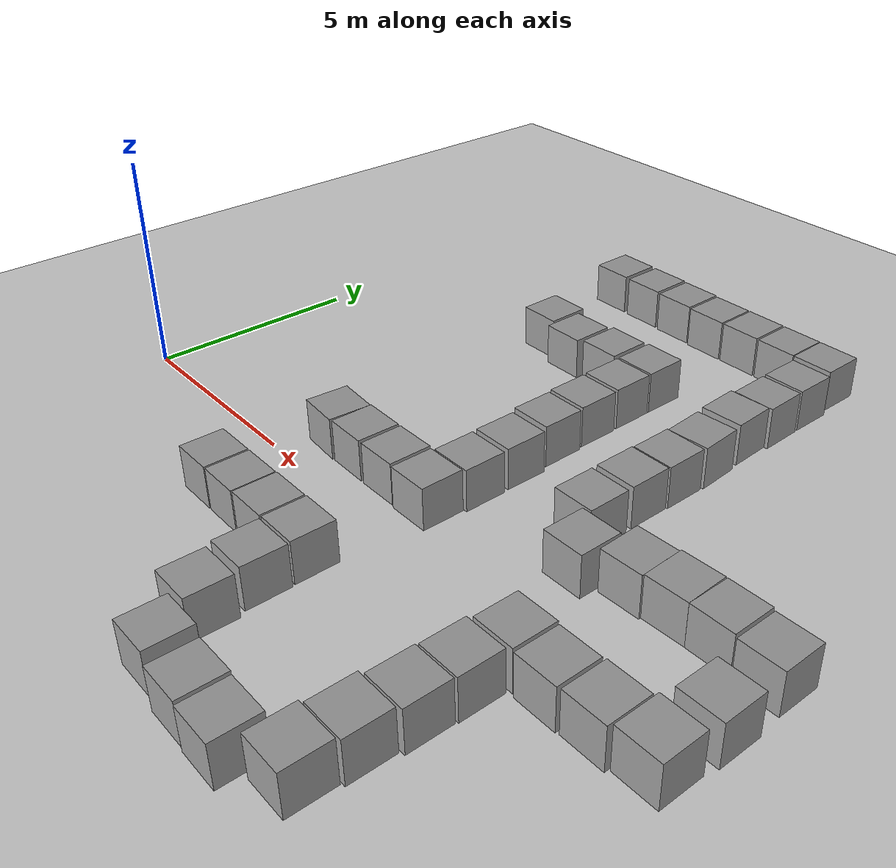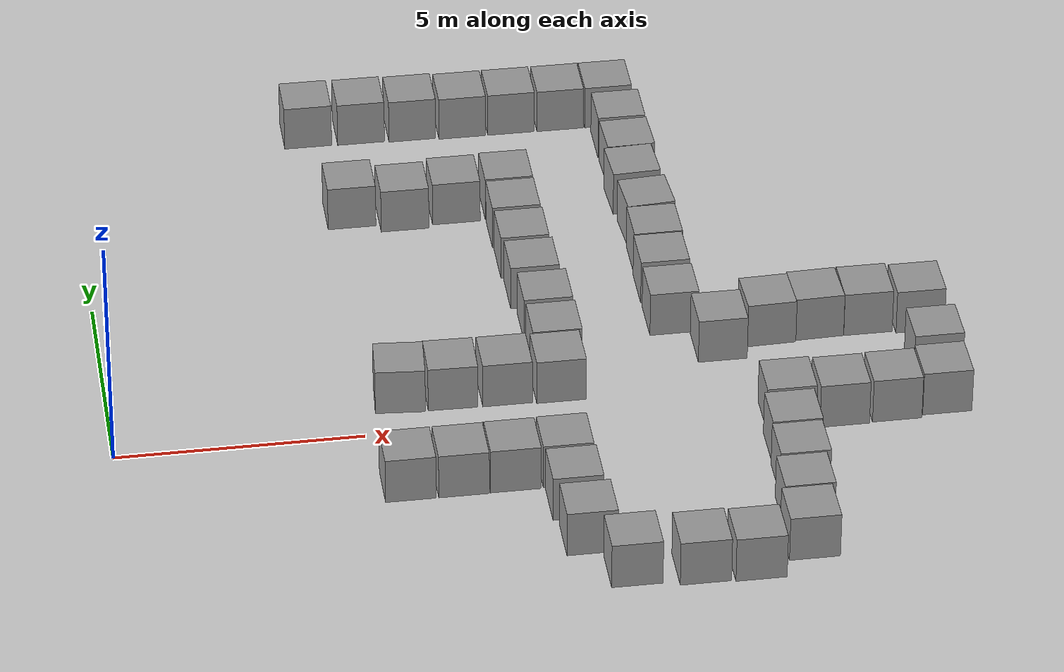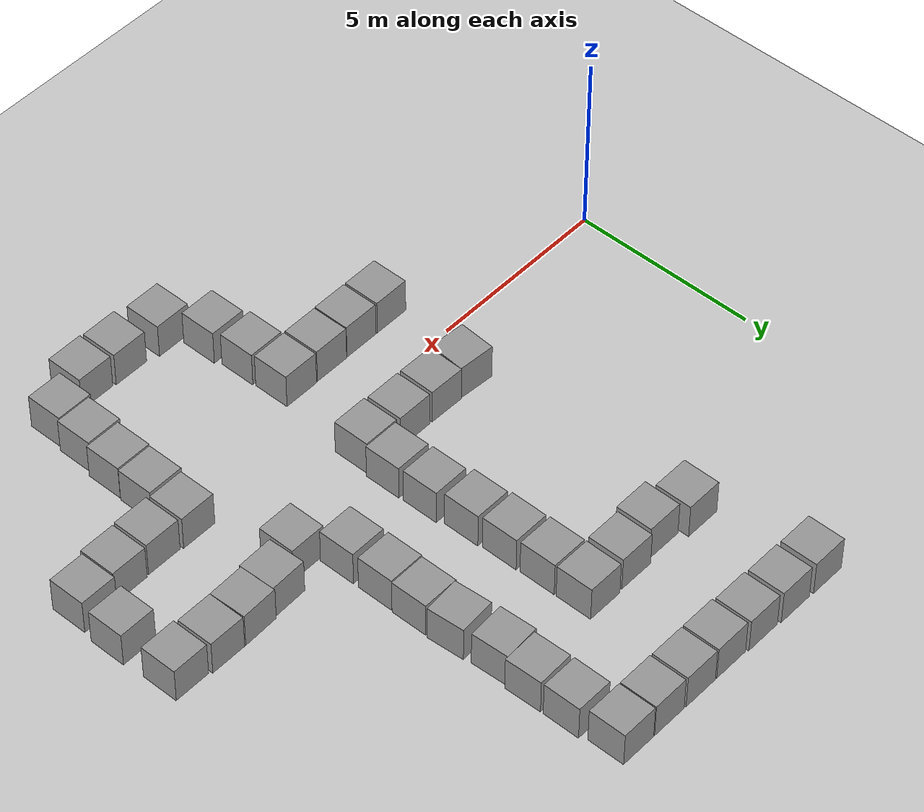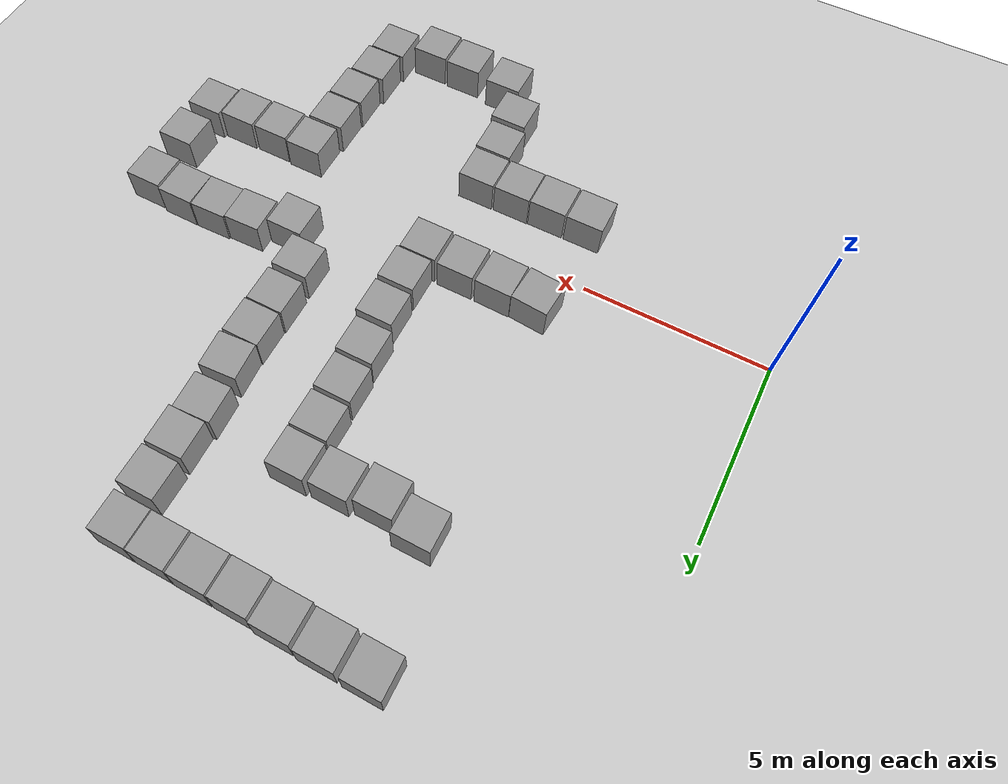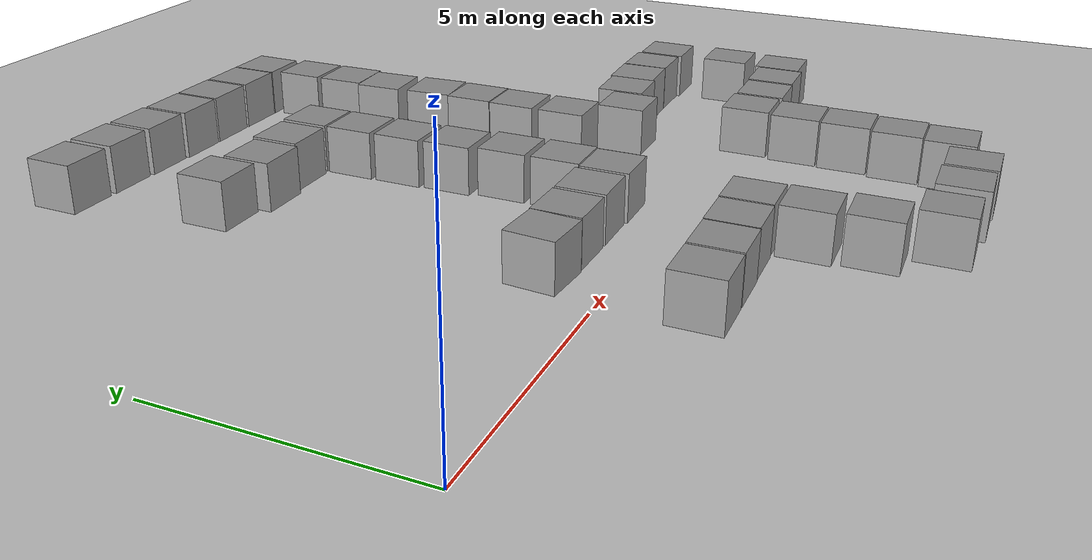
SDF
<sdf version="1.7">
 <world name="default">
  <model name="ground_plane">
   <static>1</static>
   <link name="link">
    <collision name="collision">
     <geometry><plane><normal>0 0 1</normal><size>100 100</size></plane></geometry>
     <surface><friction><ode><mu>100</mu><mu2>50</mu2></ode></friction></surface>
    </collision>
    <visual name="visual">
     <cast_shadows>0</cast_shadows>
     <geometry><plane><normal>0 0 1</normal><size>100 100</size></plane></geometry>
     <material>
      <script><uri>file://media/materials/scripts/gazebo.material</uri><name>Gazebo/Grey</name></script>
     </material>
    </visual>
   </link>
  </model>
  <model name="unit_box_4">
   <pose>5.83439 1.19515 0.499995 -1e-05 -0 -0.078203</pose>
   <link name="link">
    <inertial>
     <mass>1</mass>
     <inertia>
      <ixx>0.166667</ixx>
      <ixy>0</ixy>
      <ixz>0</ixz>
      <iyy>0.166667</iyy>
      <iyz>0</iyz>
      <izz>0.166667</izz>
     </inertia>
    </inertial>
    <collision name="collision"><geometry><box><size>1 1 1</size></box></geometry></collision>
    <visual name="visual">
     <geometry><box><size>1 1 1</size></box></geometry>
     <material>
      <script><name>Gazebo/Grey</name><uri>file://media/materials/scripts/gazebo.material</uri></script>
     </material>
    </visual>
   </link>
  </model>
  <model name="unit_box_5">
   <pose>6.86221 1.16701 0.499995 -1e-05 -0 -0.020162</pose>
   <link name="link">
    <inertial>
     <mass>1</mass>
     <inertia>
      <ixx>0.166667</ixx>
      <ixy>0</ixy>
      <ixz>0</ixz>
      <iyy>0.166667</iyy>
      <iyz>0</iyz>
      <izz>0.166667</izz>
     </inertia>
    </inertial>
    <collision name="collision"><geometry><box><size>1 1 1</size></box></geometry></collision>
    <visual name="visual">
     <geometry><box><size>1 1 1</size></box></geometry>
     <material>
      <script><name>Gazebo/Grey</name><uri>file://media/materials/scripts/gazebo.material</uri></script>
     </material>
    </visual>
   </link>
  </model>
  <model name="unit_box_6">
   <pose>7.9487 1.15327 0.499995 -1e-05 0 0</pose>
   <link name="link">
    <inertial>
     <mass>1</mass>
     <inertia>
      <ixx>0.166667</ixx>
      <ixy>0</ixy>
      <ixz>0</ixz>
      <iyy>0.166667</iyy>
      <iyz>0</iyz>
      <izz>0.166667</izz>
     </inertia>
    </inertial>
    <collision name="collision"><geometry><box><size>1 1 1</size></box></geometry></collision>
    <visual name="visual">
     <geometry><box><size>1 1 1</size></box></geometry>
     <material>
      <script><name>Gazebo/Grey</name><uri>file://media/materials/scripts/gazebo.material</uri></script>
     </material>
    </visual>
   </link>
  </model>
  <model name="unit_box_7">
   <pose>9.03135 1.11313 0.499995 0 1e-05 0</pose>
   <link name="link">
    <inertial>
     <mass>1</mass>
     <inertia>
      <ixx>0.166667</ixx>
      <ixy>0</ixy>
      <ixz>0</ixz>
      <iyy>0.166667</iyy>
      <iyz>0</iyz>
      <izz>0.166667</izz>
     </inertia>
    </inertial>
    <collision name="collision"><geometry><box><size>1 1 1</size></box></geometry></collision>
    <visual name="visual">
     <geometry><box><size>1 1 1</size></box></geometry>
     <material>
      <script><name>Gazebo/Grey</name><uri>file://media/materials/scripts/gazebo.material</uri></script>
     </material>
    </visual>
   </link>
  </model>
  <model name="unit_box_8">
   <pose>8.76045 -1.66109 0.499995 0 -1e-05 0</pose>
   <link name="link">
    <inertial>
     <mass>1</mass>
     <inertia>
      <ixx>0.166667</ixx>
      <ixy>0</ixy>
      <ixz>0</ixz>
      <iyy>0.166667</iyy>
      <iyz>0</iyz>
      <izz>0.166667</izz>
     </inertia>
    </inertial>
    <collision name="collision"><geometry><box><size>1 1 1</size></box></geometry></collision>
    <visual name="visual">
     <geometry><box><size>1 1 1</size></box></geometry>
     <material>
      <script><name>Gazebo/Grey</name><uri>file://media/materials/scripts/gazebo.material</uri></script>
     </material>
    </visual>
   </link>
  </model>
  <model name="unit_box_9">
   <pose>7.71543 -1.67512 0.499995 0 1e-05 0</pose>
   <link name="link">
    <inertial>
     <mass>1</mass>
     <inertia>
      <ixx>0.166667</ixx>
      <ixy>0</ixy>
      <ixz>0</ixz>
      <iyy>0.166667</iyy>
      <iyz>0</iyz>
      <izz>0.166667</izz>
     </inertia>
    </inertial>
    <collision name="collision"><geometry><box><size>1 1 1</size></box></geometry></collision>
    <visual name="visual">
     <geometry><box><size>1 1 1</size></box></geometry>
     <material>
      <script><name>Gazebo/Grey</name><uri>file://media/materials/scripts/gazebo.material</uri></script>
     </material>
    </visual>
   </link>
  </model>
  <model name="unit_box_10">
   <pose>6.68845 -1.68927 0.499995 -1e-05 0 0</pose>
   <link name="link">
    <inertial>
     <mass>1</mass>
     <inertia>
      <ixx>0.166667</ixx>
      <ixy>0</ixy>
      <ixz>0</ixz>
      <iyy>0.166667</iyy>
      <iyz>0</iyz>
      <izz>0.166667</izz>
     </inertia>
    </inertial>
    <collision name="collision"><geometry><box><size>1 1 1</size></box></geometry></collision>
    <visual name="visual">
     <geometry><box><size>1 1 1</size></box></geometry>
     <material>
      <script><name>Gazebo/Grey</name><uri>file://media/materials/scripts/gazebo.material</uri></script>
     </material>
    </visual>
   </link>
  </model>
  <model name="unit_box_11">
   <pose>5.63972 -1.68978 0.499995 0 1e-05 0</pose>
   <link name="link">
    <inertial>
     <mass>1</mass>
     <inertia>
      <ixx>0.166667</ixx>
      <ixy>0</ixy>
      <ixz>0</ixz>
      <iyy>0.166667</iyy>
      <iyz>0</iyz>
      <izz>0.166667</izz>
     </inertia>
    </inertial>
    <collision name="collision"><geometry><box><size>1 1 1</size></box></geometry></collision>
    <visual name="visual">
     <geometry><box><size>1 1 1</size></box></geometry>
     <material>
      <script><name>Gazebo/Grey</name><uri>file://media/materials/scripts/gazebo.material</uri></script>
     </material>
    </visual>
   </link>
  </model>
  <model name="unit_box_16">
   <pose>8.79403 -2.72072 0.499995 -1e-05 0 0</pose>
   <link name="link">
    <inertial>
     <mass>1</mass>
     <inertia>
      <ixx>0.166667</ixx>
      <ixy>0</ixy>
      <ixz>0</ixz>
      <iyy>0.166667</iyy>
      <iyz>0</iyz>
      <izz>0.166667</izz>
     </inertia>
    </inertial>
    <collision name="collision"><geometry><box><size>1 1 1</size></box></geometry></collision>
    <visual name="visual">
     <geometry><box><size>1 1 1</size></box></geometry>
     <material>
      <script><name>Gazebo/Grey</name><uri>file://media/materials/scripts/gazebo.material</uri></script>
     </material>
    </visual>
   </link>
  </model>
  <model name="unit_box_17">
   <pose>8.89804 -3.86534 0.499995 0 1e-05 0</pose>
   <link name="link">
    <inertial>
     <mass>1</mass>
     <inertia>
      <ixx>0.166667</ixx>
      <ixy>0</ixy>
      <ixz>0</ixz>
      <iyy>0.166667</iyy>
      <iyz>0</iyz>
      <izz>0.166667</izz>
     </inertia>
    </inertial>
    <collision name="collision"><geometry><box><size>1 1 1</size></box></geometry></collision>
    <visual name="visual">
     <geometry><box><size>1 1 1</size></box></geometry>
     <material>
      <script><name>Gazebo/Grey</name><uri>file://media/materials/scripts/gazebo.material</uri></script>
     </material>
    </visual>
   </link>
  </model>
  <model name="unit_box_18">
   <pose>9.59968 -4.97217 0.499995 -1e-05 0 0</pose>
   <link name="link">
    <inertial>
     <mass>1</mass>
     <inertia>
      <ixx>0.166667</ixx>
      <ixy>0</ixy>
      <ixz>0</ixz>
      <iyy>0.166667</iyy>
      <iyz>0</iyz>
      <izz>0.166667</izz>
     </inertia>
    </inertial>
    <collision name="collision"><geometry><box><size>1 1 1</size></box></geometry></collision>
    <visual name="visual">
     <geometry><box><size>1 1 1</size></box></geometry>
     <material>
      <script><name>Gazebo/Grey</name><uri>file://media/materials/scripts/gazebo.material</uri></script>
     </material>
    </visual>
   </link>
  </model>
  <model name="unit_box_19">
   <pose>10.916 -5.08427 0.499995 0 1e-05 0</pose>
   <link name="link">
    <inertial>
     <mass>1</mass>
     <inertia>
      <ixx>0.166667</ixx>
      <ixy>0</ixy>
      <ixz>0</ixz>
      <iyy>0.166667</iyy>
      <iyz>0</iyz>
      <izz>0.166667</izz>
     </inertia>
    </inertial>
    <collision name="collision"><geometry><box><size>1 1 1</size></box></geometry></collision>
    <visual name="visual">
     <geometry><box><size>1 1 1</size></box></geometry>
     <material>
      <script><name>Gazebo/Grey</name><uri>file://media/materials/scripts/gazebo.material</uri></script>
     </material>
    </visual>
   </link>
  </model>
  <model name="unit_box_20">
   <pose>11.9942 -5.11768 0.499995 -1e-05 0 0</pose>
   <link name="link">
    <inertial>
     <mass>1</mass>
     <inertia>
      <ixx>0.166667</ixx>
      <ixy>0</ixy>
      <ixz>0</ixz>
      <iyy>0.166667</iyy>
      <iyz>0</iyz>
      <izz>0.166667</izz>
     </inertia>
    </inertial>
    <collision name="collision"><geometry><box><size>1 1 1</size></box></geometry></collision>
    <visual name="visual">
     <geometry><box><size>1 1 1</size></box></geometry>
     <material>
      <script><name>Gazebo/Grey</name><uri>file://media/materials/scripts/gazebo.material</uri></script>
     </material>
    </visual>
   </link>
  </model>
  <model name="unit_box_21">
   <pose>13.128 -4.61853 0.499995 0 1e-05 0</pose>
   <link name="link">
    <inertial>
     <mass>1</mass>
     <inertia>
      <ixx>0.166667</ixx>
      <ixy>0</ixy>
      <ixz>0</ixz>
      <iyy>0.166667</iyy>
      <iyz>0</iyz>
      <izz>0.166667</izz>
     </inertia>
    </inertial>
    <collision name="collision"><geometry><box><size>1 1 1</size></box></geometry></collision>
    <visual name="visual">
     <geometry><box><size>1 1 1</size></box></geometry>
     <material>
      <script><name>Gazebo/Grey</name><uri>file://media/materials/scripts/gazebo.material</uri></script>
     </material>
    </visual>
   </link>
  </model>
  <model name="unit_box_22">
   <pose>13.2109 -3.58644 0.499995 -1e-05 0 0</pose>
   <link name="link">
    <inertial>
     <mass>1</mass>
     <inertia>
      <ixx>0.166667</ixx>
      <ixy>0</ixy>
      <ixz>0</ixz>
      <iyy>0.166667</iyy>
      <iyz>0</iyz>
      <izz>0.166667</izz>
     </inertia>
    </inertial>
    <collision name="collision"><geometry><box><size>1 1 1</size></box></geometry></collision>
    <visual name="visual">
     <geometry><box><size>1 1 1</size></box></geometry>
     <material>
      <script><name>Gazebo/Grey</name><uri>file://media/materials/scripts/gazebo.material</uri></script>
     </material>
    </visual>
   </link>
  </model>
  <model name="unit_box_23">
   <pose>13.3131 -2.54327 0.499995 0 1e-05 0</pose>
   <link name="link">
    <inertial>
     <mass>1</mass>
     <inertia>
      <ixx>0.166667</ixx>
      <ixy>0</ixy>
      <ixz>0</ixz>
      <iyy>0.166667</iyy>
      <iyz>0</iyz>
      <izz>0.166667</izz>
     </inertia>
    </inertial>
    <collision name="collision"><geometry><box><size>1 1 1</size></box></geometry></collision>
    <visual name="visual">
     <geometry><box><size>1 1 1</size></box></geometry>
     <material>
      <script><name>Gazebo/Grey</name><uri>file://media/materials/scripts/gazebo.material</uri></script>
     </material>
    </visual>
   </link>
  </model>
  <model name="unit_box_24">
   <pose>13.3431 -1.50286 0.499995 -1e-05 0 0</pose>
   <link name="link">
    <inertial>
     <mass>1</mass>
     <inertia>
      <ixx>0.166667</ixx>
      <ixy>0</ixy>
      <ixz>0</ixz>
      <iyy>0.166667</iyy>
      <iyz>0</iyz>
      <izz>0.166667</izz>
     </inertia>
    </inertial>
    <collision name="collision"><geometry><box><size>1 1 1</size></box></geometry></collision>
    <visual name="visual">
     <geometry><box><size>1 1 1</size></box></geometry>
     <material>
      <script><name>Gazebo/Grey</name><uri>file://media/materials/scripts/gazebo.material</uri></script>
     </material>
    </visual>
   </link>
  </model>
  <model name="unit_box_25">
   <pose>13.4227 -0.430542 0.499995 0 1e-05 0</pose>
   <link name="link">
    <inertial>
     <mass>1</mass>
     <inertia>
      <ixx>0.166667</ixx>
      <ixy>0</ixy>
      <ixz>0</ixz>
      <iyy>0.166667</iyy>
      <iyz>0</iyz>
      <izz>0.166667</izz>
     </inertia>
    </inertial>
    <collision name="collision"><geometry><box><size>1 1 1</size></box></geometry></collision>
    <visual name="visual">
     <geometry><box><size>1 1 1</size></box></geometry>
     <material>
      <script><name>Gazebo/Grey</name><uri>file://media/materials/scripts/gazebo.material</uri></script>
     </material>
    </visual>
   </link>
  </model>
  <model name="unit_box_26">
   <pose>14.4911 -0.475819 0.499995 -1e-05 0 0</pose>
   <link name="link">
    <inertial>
     <mass>1</mass>
     <inertia>
      <ixx>0.166667</ixx>
      <ixy>0</ixy>
      <ixz>0</ixz>
      <iyy>0.166667</iyy>
      <iyz>0</iyz>
      <izz>0.166667</izz>
     </inertia>
    </inertial>
    <collision name="collision"><geometry><box><size>1 1 1</size></box></geometry></collision>
    <visual name="visual">
     <geometry><box><size>1 1 1</size></box></geometry>
     <material>
      <script><name>Gazebo/Grey</name><uri>file://media/materials/scripts/gazebo.material</uri></script>
     </material>
    </visual>
   </link>
  </model>
  <model name="unit_box_27">
   <pose>15.5576 -0.45019 0.499995 0 1e-05 0</pose>
   <link name="link">
    <inertial>
     <mass>1</mass>
     <inertia>
      <ixx>0.166667</ixx>
      <ixy>0</ixy>
      <ixz>0</ixz>
      <iyy>0.166667</iyy>
      <iyz>0</iyz>
      <izz>0.166667</izz>
     </inertia>
    </inertial>
    <collision name="collision"><geometry><box><size>1 1 1</size></box></geometry></collision>
    <visual name="visual">
     <geometry><box><size>1 1 1</size></box></geometry>
     <material>
      <script><name>Gazebo/Grey</name><uri>file://media/materials/scripts/gazebo.material</uri></script>
     </material>
    </visual>
   </link>
  </model>
  <model name="unit_box_28">
   <pose>16.5913 -0.356361 0.499995 -1e-05 0 0</pose>
   <link name="link">
    <inertial>
     <mass>1</mass>
     <inertia>
      <ixx>0.166667</ixx>
      <ixy>0</ixy>
      <ixz>0</ixz>
      <iyy>0.166667</iyy>
      <iyz>0</iyz>
      <izz>0.166667</izz>
     </inertia>
    </inertial>
    <collision name="collision"><geometry><box><size>1 1 1</size></box></geometry></collision>
    <visual name="visual">
     <geometry><box><size>1 1 1</size></box></geometry>
     <material>
      <script><name>Gazebo/Grey</name><uri>file://media/materials/scripts/gazebo.material</uri></script>
     </material>
    </visual>
   </link>
  </model>
  <model name="unit_box_29">
   <pose>14.5156 2.51049 0.499995 -0 -1e-05 0.030671</pose>
   <link name="link">
    <inertial>
     <mass>1</mass>
     <inertia>
      <ixx>0.166667</ixx>
      <ixy>0</ixy>
      <ixz>0</ixz>
      <iyy>0.166667</iyy>
      <iyz>0</iyz>
      <izz>0.166667</izz>
     </inertia>
    </inertial>
    <collision name="collision"><geometry><box><size>1 1 1</size></box></geometry></collision>
    <visual name="visual">
     <geometry><box><size>1 1 1</size></box></geometry>
     <material>
      <script><name>Gazebo/Grey</name><uri>file://media/materials/scripts/gazebo.material</uri></script>
     </material>
    </visual>
   </link>
  </model>
  <model name="unit_box_30">
   <pose>11.6391 3.0877 0.499995 1e-05 -0 0</pose>
   <link name="link">
    <inertial>
     <mass>1</mass>
     <inertia>
      <ixx>0.166667</ixx>
      <ixy>0</ixy>
      <ixz>0</ixz>
      <iyy>0.166667</iyy>
      <iyz>0</iyz>
      <izz>0.166667</izz>
     </inertia>
    </inertial>
    <collision name="collision"><geometry><box><size>1 1 1</size></box></geometry></collision>
    <visual name="visual">
     <geometry><box><size>1 1 1</size></box></geometry>
     <material>
      <script><name>Gazebo/Grey</name><uri>file://media/materials/scripts/gazebo.material</uri></script>
     </material>
    </visual>
   </link>
  </model>
  <model name="unit_box_31">
   <pose>15.533 2.52411 0.499995 -1e-05 0 0</pose>
   <link name="link">
    <inertial>
     <mass>1</mass>
     <inertia>
      <ixx>0.166667</ixx>
      <ixy>0</ixy>
      <ixz>0</ixz>
      <iyy>0.166667</iyy>
      <iyz>0</iyz>
      <izz>0.166667</izz>
     </inertia>
    </inertial>
    <collision name="collision"><geometry><box><size>1 1 1</size></box></geometry></collision>
    <visual name="visual">
     <geometry><box><size>1 1 1</size></box></geometry>
     <material>
      <script><name>Gazebo/Grey</name><uri>file://media/materials/scripts/gazebo.material</uri></script>
     </material>
    </visual>
   </link>
  </model>
  <model name="unit_box_32">
   <pose>16.6003 2.46368 0.499995 0 1e-05 0</pose>
   <link name="link">
    <inertial>
     <mass>1</mass>
     <inertia>
      <ixx>0.166667</ixx>
      <ixy>0</ixy>
      <ixz>0</ixz>
      <iyy>0.166667</iyy>
      <iyz>0</iyz>
      <izz>0.166667</izz>
     </inertia>
    </inertial>
    <collision name="collision"><geometry><box><size>1 1 1</size></box></geometry></collision>
    <visual name="visual">
     <geometry><box><size>1 1 1</size></box></geometry>
     <material>
      <script><name>Gazebo/Grey</name><uri>file://media/materials/scripts/gazebo.material</uri></script>
     </material>
    </visual>
   </link>
  </model>
  <model name="unit_box_33">
   <pose>16.6668 0.917596 0.499995 -1e-05 0 0</pose>
   <link name="link">
    <inertial>
     <mass>1</mass>
     <inertia>
      <ixx>0.166667</ixx>
      <ixy>0</ixy>
      <ixz>0</ixz>
      <iyy>0.166667</iyy>
      <iyz>0</iyz>
      <izz>0.166667</izz>
     </inertia>
    </inertial>
    <collision name="collision"><geometry><box><size>1 1 1</size></box></geometry></collision>
    <visual name="visual">
     <geometry><box><size>1 1 1</size></box></geometry>
     <material>
      <script><name>Gazebo/Grey</name><uri>file://media/materials/scripts/gazebo.material</uri></script>
     </material>
    </visual>
   </link>
  </model>
  <model name="unit_box_34">
   <pose>11.6314 4.22803 0.499995 1e-05 -0 0</pose>
   <link name="link">
    <inertial>
     <mass>1</mass>
     <inertia>
      <ixx>0.166667</ixx>
      <ixy>0</ixy>
      <ixz>0</ixz>
      <iyy>0.166667</iyy>
      <iyz>0</iyz>
      <izz>0.166667</izz>
     </inertia>
    </inertial>
    <collision name="collision"><geometry><box><size>1 1 1</size></box></geometry></collision>
    <visual name="visual">
     <geometry><box><size>1 1 1</size></box></geometry>
     <material>
      <script><name>Gazebo/Grey</name><uri>file://media/materials/scripts/gazebo.material</uri></script>
     </material>
    </visual>
   </link>
  </model>
  <model name="unit_box_35">
   <pose>11.654 5.25725 0.499995 1e-05 -0 0.004424</pose>
   <link name="link">
    <inertial>
     <mass>1</mass>
     <inertia>
      <ixx>0.166667</ixx>
      <ixy>0</ixy>
      <ixz>0</ixz>
      <iyy>0.166667</iyy>
      <iyz>0</iyz>
      <izz>0.166667</izz>
     </inertia>
    </inertial>
    <collision name="collision"><geometry><box><size>1 1 1</size></box></geometry></collision>
    <visual name="visual">
     <geometry><box><size>1 1 1</size></box></geometry>
     <material>
      <script><name>Gazebo/Grey</name><uri>file://media/materials/scripts/gazebo.material</uri></script>
     </material>
    </visual>
   </link>
  </model>
  <model name="unit_box_36">
   <pose>13.5174 2.43423 0.499995 1e-05 0 0.030648</pose>
   <link name="link">
    <inertial>
     <mass>1</mass>
     <inertia>
      <ixx>0.166667</ixx>
      <ixy>0</ixy>
      <ixz>0</ixz>
      <iyy>0.166667</iyy>
      <iyz>0</iyz>
      <izz>0.166667</izz>
     </inertia>
    </inertial>
    <collision name="collision"><geometry><box><size>1 1 1</size></box></geometry></collision>
    <visual name="visual">
     <geometry><box><size>1 1 1</size></box></geometry>
     <material>
      <script><name>Gazebo/Grey</name><uri>file://media/materials/scripts/gazebo.material</uri></script>
     </material>
    </visual>
   </link>
  </model>
  <model name="unit_box_37">
   <pose>11.6462 6.2886 0.5 0 -0 0.069266</pose>
   <link name="link">
    <inertial>
     <mass>1</mass>
     <inertia>
      <ixx>0.166667</ixx>
      <ixy>0</ixy>
      <ixz>0</ixz>
      <iyy>0.166667</iyy>
      <iyz>0</iyz>
      <izz>0.166667</izz>
     </inertia>
    </inertial>
    <collision name="collision"><geometry><box><size>1 1 1</size></box></geometry></collision>
    <visual name="visual">
     <geometry><box><size>1 1 1</size></box></geometry>
     <material>
      <script><name>Gazebo/Grey</name><uri>file://media/materials/scripts/gazebo.material</uri></script>
     </material>
    </visual>
   </link>
  </model>
  <model name="unit_box_38">
   <pose>12.4601 2.0331 0.499995 -1e-05 0 0</pose>
   <link name="link">
    <inertial>
     <mass>1</mass>
     <inertia>
      <ixx>0.166667</ixx>
      <ixy>0</ixy>
      <ixz>0</ixz>
      <iyy>0.166667</iyy>
      <iyz>0</iyz>
      <izz>0.166667</izz>
     </inertia>
    </inertial>
    <collision name="collision"><geometry><box><size>1 1 1</size></box></geometry></collision>
    <visual name="visual">
     <geometry><box><size>1 1 1</size></box></geometry>
     <material>
      <script><name>Gazebo/Grey</name><uri>file://media/materials/scripts/gazebo.material</uri></script>
     </material>
    </visual>
   </link>
  </model>
  <model name="unit_box_39">
   <pose>9.10292 2.14493 0.499995 -1e-05 0 0</pose>
   <link name="link">
    <inertial>
     <mass>1</mass>
     <inertia>
      <ixx>0.166667</ixx>
      <ixy>0</ixy>
      <ixz>0</ixz>
      <iyy>0.166667</iyy>
      <iyz>0</iyz>
      <izz>0.166667</izz>
     </inertia>
    </inertial>
    <collision name="collision"><geometry><box><size>1 1 1</size></box></geometry></collision>
    <visual name="visual">
     <geometry><box><size>1 1 1</size></box></geometry>
     <material>
      <script><name>Gazebo/Grey</name><uri>file://media/materials/scripts/gazebo.material</uri></script>
     </material>
    </visual>
   </link>
  </model>
  <model name="unit_box_40">
   <pose>9.08102 3.26349 0.499995 0 1e-05 0</pose>
   <link name="link">
    <inertial>
     <mass>1</mass>
     <inertia>
      <ixx>0.166667</ixx>
      <ixy>0</ixy>
      <ixz>0</ixz>
      <iyy>0.166667</iyy>
      <iyz>0</iyz>
      <izz>0.166667</izz>
     </inertia>
    </inertial>
    <collision name="collision"><geometry><box><size>1 1 1</size></box></geometry></collision>
    <visual name="visual">
     <geometry><box><size>1 1 1</size></box></geometry>
     <material>
      <script><name>Gazebo/Grey</name><uri>file://media/materials/scripts/gazebo.material</uri></script>
     </material>
    </visual>
   </link>
  </model>
  <model name="unit_box_41">
   <pose>8.97202 4.41198 0.499995 -1e-05 0 0</pose>
   <link name="link">
    <inertial>
     <mass>1</mass>
     <inertia>
      <ixx>0.166667</ixx>
      <ixy>0</ixy>
      <ixz>0</ixz>
      <iyy>0.166667</iyy>
      <iyz>0</iyz>
      <izz>0.166667</izz>
     </inertia>
    </inertial>
    <collision name="collision"><geometry><box><size>1 1 1</size></box></geometry></collision>
    <visual name="visual">
     <geometry><box><size>1 1 1</size></box></geometry>
     <material>
      <script><name>Gazebo/Grey</name><uri>file://media/materials/scripts/gazebo.material</uri></script>
     </material>
    </visual>
   </link>
  </model>
  <model name="unit_box_42">
   <pose>8.92411 5.50557 0.499995 0 1e-05 0</pose>
   <link name="link">
    <inertial>
     <mass>1</mass>
     <inertia>
      <ixx>0.166667</ixx>
      <ixy>0</ixy>
      <ixz>0</ixz>
      <iyy>0.166667</iyy>
      <iyz>0</iyz>
      <izz>0.166667</izz>
     </inertia>
    </inertial>
    <collision name="collision"><geometry><box><size>1 1 1</size></box></geometry></collision>
    <visual name="visual">
     <geometry><box><size>1 1 1</size></box></geometry>
     <material>
      <script><name>Gazebo/Grey</name><uri>file://media/materials/scripts/gazebo.material</uri></script>
     </material>
    </visual>
   </link>
  </model>
  <model name="unit_box_43">
   <pose>8.90039 6.60086 0.499995 -1e-05 0 0</pose>
   <link name="link">
    <inertial>
     <mass>1</mass>
     <inertia>
      <ixx>0.166667</ixx>
      <ixy>0</ixy>
      <ixz>0</ixz>
      <iyy>0.166667</iyy>
      <iyz>0</iyz>
      <izz>0.166667</izz>
     </inertia>
    </inertial>
    <collision name="collision"><geometry><box><size>1 1 1</size></box></geometry></collision>
    <visual name="visual">
     <geometry><box><size>1 1 1</size></box></geometry>
     <material>
      <script><name>Gazebo/Grey</name><uri>file://media/materials/scripts/gazebo.material</uri></script>
     </material>
    </visual>
   </link>
  </model>
  <model name="unit_box_44">
   <pose>8.89491 7.65407 0.499995 0 1e-05 0</pose>
   <link name="link">
    <inertial>
     <mass>1</mass>
     <inertia>
      <ixx>0.166667</ixx>
      <ixy>0</ixy>
      <ixz>0</ixz>
      <iyy>0.166667</iyy>
      <iyz>0</iyz>
      <izz>0.166667</izz>
     </inertia>
    </inertial>
    <collision name="collision"><geometry><box><size>1 1 1</size></box></geometry></collision>
    <visual name="visual">
     <geometry><box><size>1 1 1</size></box></geometry>
     <material>
      <script><name>Gazebo/Grey</name><uri>file://media/materials/scripts/gazebo.material</uri></script>
     </material>
    </visual>
   </link>
  </model>
  <model name="unit_box_45">
   <pose>11.54 7.48372 0.499995 -1e-05 -0 0.048086</pose>
   <link name="link">
    <inertial>
     <mass>1</mass>
     <inertia>
      <ixx>0.166667</ixx>
      <ixy>0</ixy>
      <ixz>0</ixz>
      <iyy>0.166667</iyy>
      <iyz>0</iyz>
      <izz>0.166667</izz>
     </inertia>
    </inertial>
    <collision name="collision"><geometry><box><size>1 1 1</size></box></geometry></collision>
    <visual name="visual">
     <geometry><box><size>1 1 1</size></box></geometry>
     <material>
      <script><name>Gazebo/Grey</name><uri>file://media/materials/scripts/gazebo.material</uri></script>
     </material>
    </visual>
   </link>
  </model>
  <model name="unit_box_46">
   <pose>8.33103 10.7601 0.499995 -1e-05 0 0</pose>
   <link name="link">
    <inertial>
     <mass>1</mass>
     <inertia>
      <ixx>0.166667</ixx>
      <ixy>0</ixy>
      <ixz>0</ixz>
      <iyy>0.166667</iyy>
      <iyz>0</iyz>
      <izz>0.166667</izz>
     </inertia>
    </inertial>
    <collision name="collision"><geometry><box><size>1 1 1</size></box></geometry></collision>
    <visual name="visual">
     <geometry><box><size>1 1 1</size></box></geometry>
     <material>
      <script><name>Gazebo/Grey</name><uri>file://media/materials/scripts/gazebo.material</uri></script>
     </material>
    </visual>
   </link>
  </model>
  <model name="unit_box_47">
   <pose>9.37924 10.7607 0.499995 -1e-05 0 0</pose>
   <link name="link">
    <inertial>
     <mass>1</mass>
     <inertia>
      <ixx>0.166667</ixx>
      <ixy>0</ixy>
      <ixz>0</ixz>
      <iyy>0.166667</iyy>
      <iyz>0</iyz>
      <izz>0.166667</izz>
     </inertia>
    </inertial>
    <collision name="collision"><geometry><box><size>1 1 1</size></box></geometry></collision>
    <visual name="visual">
     <geometry><box><size>1 1 1</size></box></geometry>
     <material>
      <script><name>Gazebo/Grey</name><uri>file://media/materials/scripts/gazebo.material</uri></script>
     </material>
    </visual>
   </link>
  </model>
  <model name="unit_box_48">
   <pose>10.4354 10.7533 0.499995 0 1e-05 0</pose>
   <link name="link">
    <inertial>
     <mass>1</mass>
     <inertia>
      <ixx>0.166667</ixx>
      <ixy>0</ixy>
      <ixz>0</ixz>
      <iyy>0.166667</iyy>
      <iyz>0</iyz>
      <izz>0.166667</izz>
     </inertia>
    </inertial>
    <collision name="collision"><geometry><box><size>1 1 1</size></box></geometry></collision>
    <visual name="visual">
     <geometry><box><size>1 1 1</size></box></geometry>
     <material>
      <script><name>Gazebo/Grey</name><uri>file://media/materials/scripts/gazebo.material</uri></script>
     </material>
    </visual>
   </link>
  </model>
  <model name="unit_box_49">
   <pose>11.4623 10.7523 0.499995 -1e-05 0 0</pose>
   <link name="link">
    <inertial>
     <mass>1</mass>
     <inertia>
      <ixx>0.166667</ixx>
      <ixy>0</ixy>
      <ixz>0</ixz>
      <iyy>0.166667</iyy>
      <iyz>0</iyz>
      <izz>0.166667</izz>
     </inertia>
    </inertial>
    <collision name="collision"><geometry><box><size>1 1 1</size></box></geometry></collision>
    <visual name="visual">
     <geometry><box><size>1 1 1</size></box></geometry>
     <material>
      <script><name>Gazebo/Grey</name><uri>file://media/materials/scripts/gazebo.material</uri></script>
     </material>
    </visual>
   </link>
  </model>
  <model name="unit_box_50">
   <pose>11.5881 8.49628 0.499995 0 -1e-05 0.026715</pose>
   <link name="link">
    <inertial>
     <mass>1</mass>
     <inertia>
      <ixx>0.166667</ixx>
      <ixy>0</ixy>
      <ixz>0</ixz>
      <iyy>0.166667</iyy>
      <iyz>0</iyz>
      <izz>0.166667</izz>
     </inertia>
    </inertial>
    <collision name="collision"><geometry><box><size>1 1 1</size></box></geometry></collision>
    <visual name="visual">
     <geometry><box><size>1 1 1</size></box></geometry>
     <material>
      <script><name>Gazebo/Grey</name><uri>file://media/materials/scripts/gazebo.material</uri></script>
     </material>
    </visual>
   </link>
  </model>
  <model name="unit_box_51">
   <pose>11.5683 9.58155 0.499995 -1e-05 0 0</pose>
   <link name="link">
    <inertial>
     <mass>1</mass>
     <inertia>
      <ixx>0.166667</ixx>
      <ixy>0</ixy>
      <ixz>0</ixz>
      <iyy>0.166667</iyy>
      <iyz>0</iyz>
      <izz>0.166667</izz>
     </inertia>
    </inertial>
    <collision name="collision"><geometry><box><size>1 1 1</size></box></geometry></collision>
    <visual name="visual">
     <geometry><box><size>1 1 1</size></box></geometry>
     <material>
      <script><name>Gazebo/Grey</name><uri>file://media/materials/scripts/gazebo.material</uri></script>
     </material>
    </visual>
   </link>
  </model>
  <model name="unit_box_52">
   <pose>7.26487 10.8009 0.499995 0 1e-05 0</pose>
   <link name="link">
    <inertial>
     <mass>1</mass>
     <inertia>
      <ixx>0.166667</ixx>
      <ixy>0</ixy>
      <ixz>0</ixz>
      <iyy>0.166667</iyy>
      <iyz>0</iyz>
      <izz>0.166667</izz>
     </inertia>
    </inertial>
    <collision name="collision"><geometry><box><size>1 1 1</size></box></geometry></collision>
    <visual name="visual">
     <geometry><box><size>1 1 1</size></box></geometry>
     <material>
      <script><name>Gazebo/Grey</name><uri>file://media/materials/scripts/gazebo.material</uri></script>
     </material>
    </visual>
   </link>
  </model>
  <model name="unit_box_53">
   <pose>6.17175 10.8343 0.499995 -1e-05 0 0</pose>
   <link name="link">
    <inertial>
     <mass>1</mass>
     <inertia>
      <ixx>0.166667</ixx>
      <ixy>0</ixy>
      <ixz>0</ixz>
      <iyy>0.166667</iyy>
      <iyz>0</iyz>
      <izz>0.166667</izz>
     </inertia>
    </inertial>
    <collision name="collision"><geometry><box><size>1 1 1</size></box></geometry></collision>
    <visual name="visual">
     <geometry><box><size>1 1 1</size></box></geometry>
     <material>
      <script><name>Gazebo/Grey</name><uri>file://media/materials/scripts/gazebo.material</uri></script>
     </material>
    </visual>
   </link>
  </model>
  <model name="unit_box_54">
   <pose>5.04461 10.852 0.499995 0 1e-05 0</pose>
   <link name="link">
    <inertial>
     <mass>1</mass>
     <inertia>
      <ixx>0.166667</ixx>
      <ixy>0</ixy>
      <ixz>0</ixz>
      <iyy>0.166667</iyy>
      <iyz>0</iyz>
      <izz>0.166667</izz>
     </inertia>
    </inertial>
    <collision name="collision"><geometry><box><size>1 1 1</size></box></geometry></collision>
    <visual name="visual">
     <geometry><box><size>1 1 1</size></box></geometry>
     <material>
      <script><name>Gazebo/Grey</name><uri>file://media/materials/scripts/gazebo.material</uri></script>
     </material>
    </visual>
   </link>
  </model>
  <model name="unit_box_56">
   <pose>7.78281 7.61521 0.499995 1e-05 -0 0</pose>
   <link name="link">
    <inertial>
     <mass>1</mass>
     <inertia>
      <ixx>0.166667</ixx>
      <ixy>0</ixy>
      <ixz>0</ixz>
      <iyy>0.166667</iyy>
      <iyz>0</iyz>
      <izz>0.166667</izz>
     </inertia>
    </inertial>
    <collision name="collision"><geometry><box><size>1 1 1</size></box></geometry></collision>
    <visual name="visual">
     <geometry><box><size>1 1 1</size></box></geometry>
     <material>
      <script><name>Gazebo/Grey</name><uri>file://media/materials/scripts/gazebo.material</uri></script>
     </material>
    </visual>
   </link>
  </model>
  <model name="unit_box_57">
   <pose>6.69164 7.50635 0.499995 -1e-05 0 0</pose>
   <link name="link">
    <inertial>
     <mass>1</mass>
     <inertia>
      <ixx>0.166667</ixx>
      <ixy>0</ixy>
      <ixz>0</ixz>
      <iyy>0.166667</iyy>
      <iyz>0</iyz>
      <izz>0.166667</izz>
     </inertia>
    </inertial>
    <collision name="collision"><geometry><box><size>1 1 1</size></box></geometry></collision>
    <visual name="visual">
     <geometry><box><size>1 1 1</size></box></geometry>
     <material>
      <script><name>Gazebo/Grey</name><uri>file://media/materials/scripts/gazebo.material</uri></script>
     </material>
    </visual>
   </link>
  </model>
  <model name="unit_box_58">
   <pose>5.60862 7.74772 0.499995 1e-05 -0 0</pose>
   <link name="link">
    <inertial>
     <mass>1</mass>
     <inertia>
      <ixx>0.166667</ixx>
      <ixy>0</ixy>
      <ixz>0</ixz>
      <iyy>0.166667</iyy>
      <iyz>0</iyz>
      <izz>0.166667</izz>
     </inertia>
    </inertial>
    <collision name="collision"><geometry><box><size>1 1 1</size></box></geometry></collision>
    <visual name="visual">
     <geometry><box><size>1 1 1</size></box></geometry>
     <material>
      <script><name>Gazebo/Grey</name><uri>file://media/materials/scripts/gazebo.material</uri></script>
     </material>
    </visual>
   </link>
  </model>
 </world>
</sdf>
